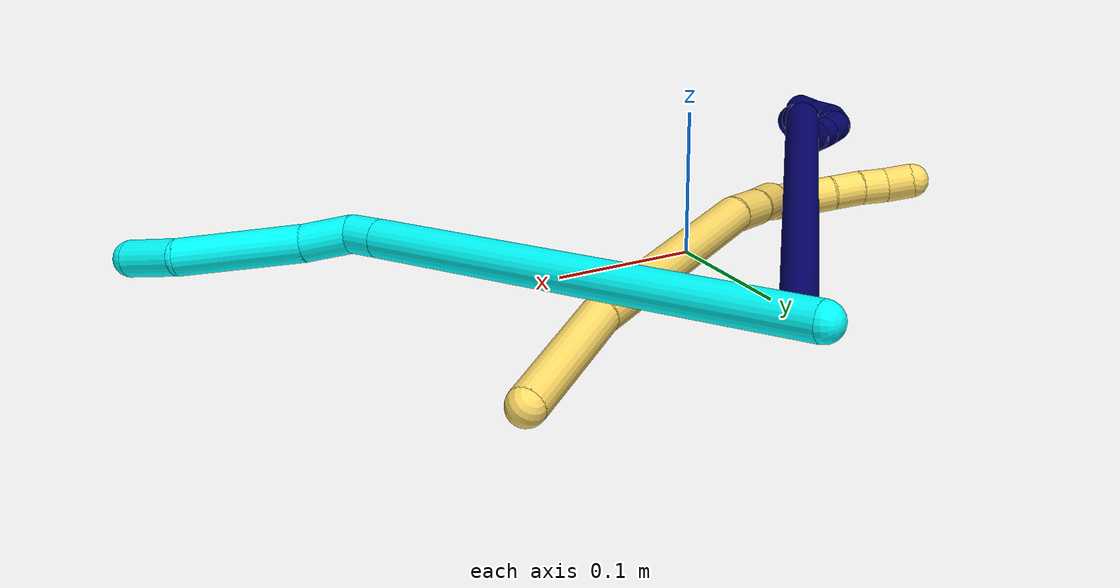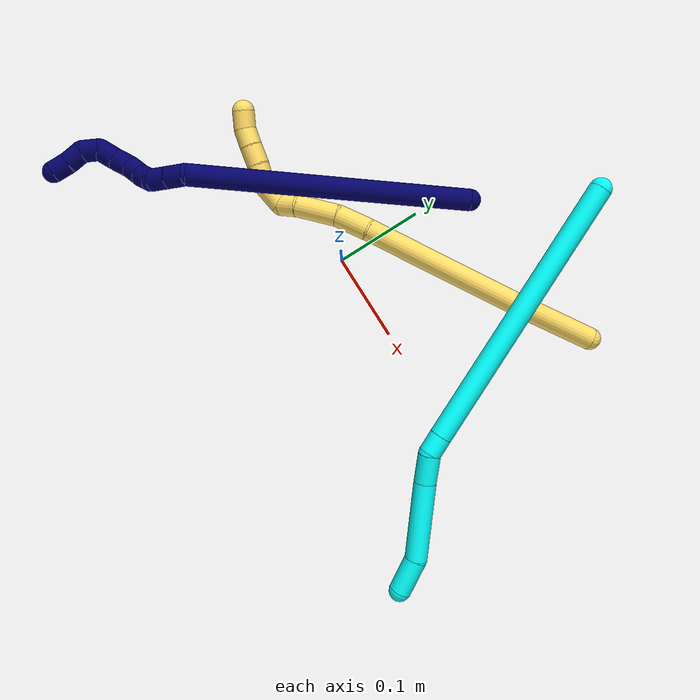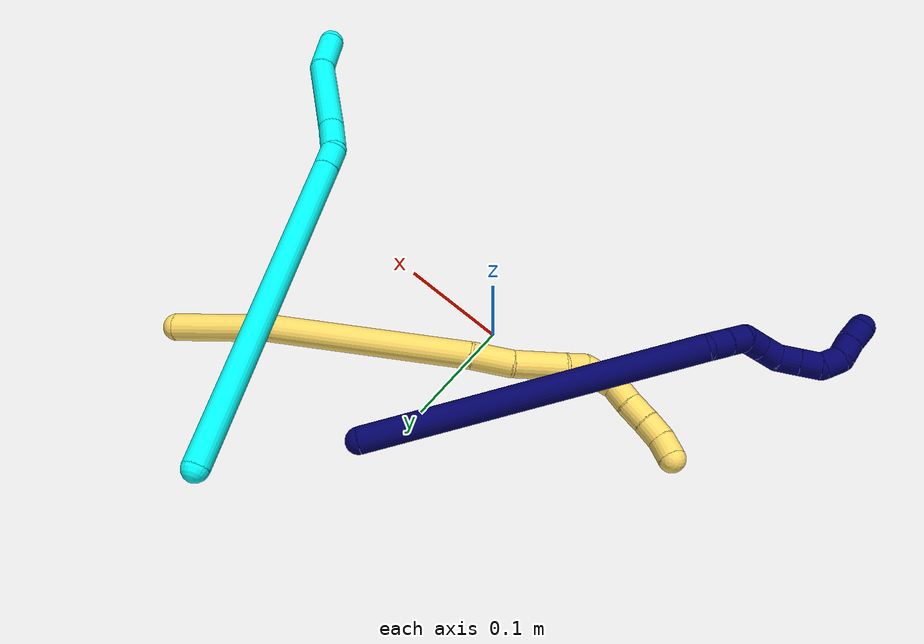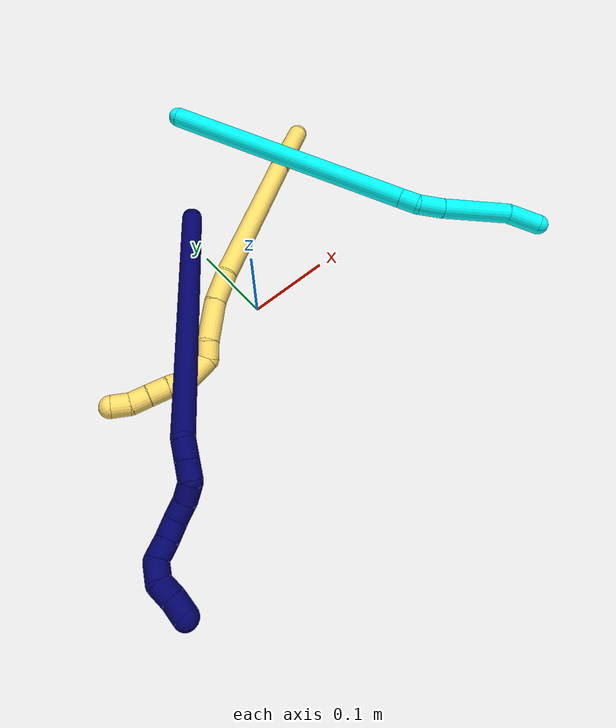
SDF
<sdf version="1.7">
 <world name="default">
  <model name="3">
   <static>0</static>
   <link name="3">
    <collision name="collision-cylinder-e_1_1_4">
     <pose>-0.002041 -0.006985 -0.157481 3.09727 -0.012949 -0.568359</pose>
     <geometry><cylinder><radius>0.0125</radius><length>0.315298</length></cylinder></geometry>
     <surface>
      <friction><ode><mu>1.16</mu><mu2>1.16</mu2><slip1>0</slip1><slip2>0</slip2></ode></friction>
      <contact><ode><kp>1e+06</kp><kd>1</kd><max_vel>0</max_vel><min_depth>0.001</min_depth></ode></contact>
     </surface>
    </collision>
    <visual name="visual-cylinder-e_1_1_4">
     <pose>-0.002041 -0.006985 -0.157481 3.09727 -0.012949 -0.568359</pose>
     <geometry><cylinder><radius>0.0125</radius><length>0.315298</length></cylinder></geometry>
     <material><ambient>0.003922 1 0.996078 1</ambient></material>
    </visual>
    <collision name="collision-cylinder-e_2_4_5">
     <pose>-0.004102 -0.014417 -0.326227 3.10191 -0.001716 -0.086406</pose>
     <geometry><cylinder><radius>0.0125</radius><length>0.022548</length></cylinder></geometry>
     <surface>
      <friction><ode><mu>1.16</mu><mu2>1.16</mu2><slip1>0</slip1><slip2>0</slip2></ode></friction>
      <contact><ode><kp>1e+06</kp><kd>1</kd><max_vel>0</max_vel><min_depth>0.001</min_depth></ode></contact>
     </surface>
    </collision>
    <visual name="visual-cylinder-e_2_4_5">
     <pose>-0.004102 -0.014417 -0.326227 3.10191 -0.001716 -0.086406</pose>
     <geometry><cylinder><radius>0.0125</radius><length>0.022548</length></cylinder></geometry>
     <material><ambient>0.003922 1 0.996078 1</ambient></material>
    </visual>
    <collision name="collision-cylinder-e_3_5_6">
     <pose>0.001842 -0.01111 -0.352566 -2.89747 0.366511 -1.97222</pose>
     <geometry><cylinder><radius>0.0125</radius><length>0.03328</length></cylinder></geometry>
     <surface>
      <friction><ode><mu>1.16</mu><mu2>1.16</mu2><slip1>0</slip1><slip2>0</slip2></ode></friction>
      <contact><ode><kp>1e+06</kp><kd>1</kd><max_vel>0</max_vel><min_depth>0.001</min_depth></ode></contact>
     </surface>
    </collision>
    <visual name="visual-cylinder-e_3_5_6">
     <pose>0.001842 -0.01111 -0.352566 -2.89747 0.366511 -1.97222</pose>
     <geometry><cylinder><radius>0.0125</radius><length>0.03328</length></cylinder></geometry>
     <material><ambient>0.003922 1 0.996078 1</ambient></material>
    </visual>
    <collision name="collision-cylinder-e_4_6_7">
     <pose>0.025662 -0.000937 -0.407381 -2.98149 0.417501 -2.41755</pose>
     <geometry><cylinder><radius>0.0125</radius><length>0.088078</length></cylinder></geometry>
     <surface>
      <friction><ode><mu>1.16</mu><mu2>1.16</mu2><slip1>0</slip1><slip2>0</slip2></ode></friction>
      <contact><ode><kp>1e+06</kp><kd>1</kd><max_vel>0</max_vel><min_depth>0.001</min_depth></ode></contact>
     </surface>
    </collision>
    <visual name="visual-cylinder-e_4_6_7">
     <pose>0.025662 -0.000937 -0.407381 -2.98149 0.417501 -2.41755</pose>
     <geometry><cylinder><radius>0.0125</radius><length>0.088078</length></cylinder></geometry>
     <material><ambient>0.003922 1 0.996078 1</ambient></material>
    </visual>
    <collision name="collision-cylinder-e_5_7_2">
     <pose>0.045267 0.007775 -0.467316 -3.02846 0.085809 -1.29739</pose>
     <geometry><cylinder><radius>0.0125</radius><length>0.040797</length></cylinder></geometry>
     <surface>
      <friction><ode><mu>1.16</mu><mu2>1.16</mu2><slip1>0</slip1><slip2>0</slip2></ode></friction>
      <contact><ode><kp>1e+06</kp><kd>1</kd><max_vel>0</max_vel><min_depth>0.001</min_depth></ode></contact>
     </surface>
    </collision>
    <visual name="visual-cylinder-e_5_7_2">
     <pose>0.045267 0.007775 -0.467316 -3.02846 0.085809 -1.29739</pose>
     <geometry><cylinder><radius>0.0125</radius><length>0.040797</length></cylinder></geometry>
     <material><ambient>0.003922 1 0.996078 1</ambient></material>
    </visual>
    <collision name="collision-sphere-2">
     <pose>0.047015 0.01007 -0.487509 0 -0 0</pose>
     <geometry><sphere><radius>0.0125</radius></sphere></geometry>
     <surface>
      <friction><ode><mu>1.16</mu><mu2>1.16</mu2><slip1>0</slip1><slip2>0</slip2></ode></friction>
      <contact><ode><kp>1e+06</kp><kd>1</kd><max_vel>0</max_vel><min_depth>0.001</min_depth></ode></contact>
     </surface>
    </collision>
    <visual name="visual-sphere-2">
     <pose>0.047015 0.01007 -0.487509 0 -0 0</pose>
     <geometry><sphere><radius>0.0125</radius></sphere></geometry>
     <material><ambient>0.003922 1 0.996078 1</ambient></material>
    </visual>
    <collision name="collision-sphere-7">
     <pose>0.043519 0.005481 -0.447123 0 -0 0</pose>
     <geometry><sphere><radius>0.0125</radius></sphere></geometry>
     <surface>
      <friction><ode><mu>1.16</mu><mu2>1.16</mu2><slip1>0</slip1><slip2>0</slip2></ode></friction>
      <contact><ode><kp>1e+06</kp><kd>1</kd><max_vel>0</max_vel><min_depth>0.001</min_depth></ode></contact>
     </surface>
    </collision>
    <visual name="visual-sphere-7">
     <pose>0.043519 0.005481 -0.447123 0 -0 0</pose>
     <geometry><sphere><radius>0.0125</radius></sphere></geometry>
     <material><ambient>0.003922 1 0.996078 1</ambient></material>
    </visual>
    <collision name="collision-sphere-6">
     <pose>0.007805 -0.007355 -0.36764 0 -0 0</pose>
     <geometry><sphere><radius>0.0125</radius></sphere></geometry>
     <surface>
      <friction><ode><mu>1.16</mu><mu2>1.16</mu2><slip1>0</slip1><slip2>0</slip2></ode></friction>
      <contact><ode><kp>1e+06</kp><kd>1</kd><max_vel>0</max_vel><min_depth>0.001</min_depth></ode></contact>
     </surface>
    </collision>
    <visual name="visual-sphere-6">
     <pose>0.007805 -0.007355 -0.36764 0 -0 0</pose>
     <geometry><sphere><radius>0.0125</radius></sphere></geometry>
     <material><ambient>0.003922 1 0.996078 1</ambient></material>
    </visual>
    <collision name="collision-sphere-5">
     <pose>-0.004121 -0.014864 -0.337492 0 -0 0</pose>
     <geometry><sphere><radius>0.0125</radius></sphere></geometry>
     <surface>
      <friction><ode><mu>1.16</mu><mu2>1.16</mu2><slip1>0</slip1><slip2>0</slip2></ode></friction>
      <contact><ode><kp>1e+06</kp><kd>1</kd><max_vel>0</max_vel><min_depth>0.001</min_depth></ode></contact>
     </surface>
    </collision>
    <visual name="visual-sphere-5">
     <pose>-0.004121 -0.014864 -0.337492 0 -0 0</pose>
     <geometry><sphere><radius>0.0125</radius></sphere></geometry>
     <material><ambient>0.003922 1 0.996078 1</ambient></material>
    </visual>
    <collision name="collision-sphere-1">
     <geometry><sphere><radius>0.0125</radius></sphere></geometry>
     <surface>
      <friction><ode><mu>1.16</mu><mu2>1.16</mu2><slip1>0</slip1><slip2>0</slip2></ode></friction>
      <contact><ode><kp>1e+06</kp><kd>1</kd><max_vel>0</max_vel><min_depth>0.001</min_depth></ode></contact>
     </surface>
    </collision>
    <visual name="visual-sphere-1">
     <geometry><sphere><radius>0.0125</radius></sphere></geometry>
     <material><ambient>0.003922 1 0.996078 1</ambient></material>
    </visual>
    <collision name="collision-sphere-4">
     <pose>-0.004083 -0.01397 -0.314962 0 -0 0</pose>
     <geometry><sphere><radius>0.0125</radius></sphere></geometry>
     <surface>
      <friction><ode><mu>1.16</mu><mu2>1.16</mu2><slip1>0</slip1><slip2>0</slip2></ode></friction>
      <contact><ode><kp>1e+06</kp><kd>1</kd><max_vel>0</max_vel><min_depth>0.001</min_depth></ode></contact>
     </surface>
    </collision>
    <visual name="visual-sphere-4">
     <pose>-0.004083 -0.01397 -0.314962 0 -0 0</pose>
     <geometry><sphere><radius>0.0125</radius></sphere></geometry>
     <material><ambient>0.003922 1 0.996078 1</ambient></material>
    </visual>
    <inertial>
     <pose>0.006864 -0.005325 -0.247377 0 -0 0</pose>
     <mass>0.5</mass>
     <inertia>
      <ixx>0.000716</ixx>
      <ixy>0</ixy>
      <ixz>0</ixz>
      <iyy>-0.003622</iyy>
      <iyz>0</iyz>
      <izz>7.5e-05</izz>
     </inertia>
    </inertial>
   </link>
   <pose>0.089495 0.27169 0.064374 -1.46687 -0.166997 0.437774</pose>
  </model>
  <model name="5">
   <static>0</static>
   <link name="5">
    <collision name="collision-cylinder-e_1_1_4">
     <pose>-0.033118 -0.032678 -0.003406 1.67464 -0.789393 -0.865946</pose>
     <geometry><cylinder><radius>0.0125</radius><length>0.093301</length></cylinder></geometry>
     <surface>
      <friction><ode><mu>1.16</mu><mu2>1.16</mu2><slip1>0</slip1><slip2>0</slip2></ode></friction>
      <contact><ode><kp>1e+06</kp><kd>1</kd><max_vel>0</max_vel><min_depth>0.001</min_depth></ode></contact>
     </surface>
    </collision>
    <visual name="visual-cylinder-e_1_1_4">
     <pose>-0.033118 -0.032678 -0.003406 1.67464 -0.789393 -0.865946</pose>
     <geometry><cylinder><radius>0.0125</radius><length>0.093301</length></cylinder></geometry>
     <material><ambient>1 0.858824 0.4 1</ambient></material>
    </visual>
    <collision name="collision-cylinder-e_2_4_5">
     <pose>-0.139243 -0.119245 -0.024237 1.88355 -0.911005 -1.18508</pose>
     <geometry><cylinder><radius>0.0125</radius><length>0.184798</length></cylinder></geometry>
     <surface>
      <friction><ode><mu>1.16</mu><mu2>1.16</mu2><slip1>0</slip1><slip2>0</slip2></ode></friction>
      <contact><ode><kp>1e+06</kp><kd>1</kd><max_vel>0</max_vel><min_depth>0.001</min_depth></ode></contact>
     </surface>
    </collision>
    <visual name="visual-cylinder-e_2_4_5">
     <pose>-0.139243 -0.119245 -0.024237 1.88355 -0.911005 -1.18508</pose>
     <geometry><cylinder><radius>0.0125</radius><length>0.184798</length></cylinder></geometry>
     <material><ambient>1 0.858824 0.4 1</ambient></material>
    </visual>
    <collision name="collision-cylinder-e_3_5_6">
     <pose>-0.227405 -0.181975 -0.047998 2.19248 -0.948282 -1.56977</pose>
     <geometry><cylinder><radius>0.0125</radius><length>0.03731</length></cylinder></geometry>
     <surface>
      <friction><ode><mu>1.16</mu><mu2>1.16</mu2><slip1>0</slip1><slip2>0</slip2></ode></friction>
      <contact><ode><kp>1e+06</kp><kd>1</kd><max_vel>0</max_vel><min_depth>0.001</min_depth></ode></contact>
     </surface>
    </collision>
    <visual name="visual-cylinder-e_3_5_6">
     <pose>-0.227405 -0.181975 -0.047998 2.19248 -0.948282 -1.56977</pose>
     <geometry><cylinder><radius>0.0125</radius><length>0.03731</length></cylinder></geometry>
     <material><ambient>1 0.858824 0.4 1</ambient></material>
    </visual>
    <collision name="collision-cylinder-e_4_6_7">
     <pose>-0.259323 -0.203476 -0.065755 2.30492 -0.77689 -1.48806</pose>
     <geometry><cylinder><radius>0.0125</radius><length>0.04782</length></cylinder></geometry>
     <surface>
      <friction><ode><mu>1.16</mu><mu2>1.16</mu2><slip1>0</slip1><slip2>0</slip2></ode></friction>
      <contact><ode><kp>1e+06</kp><kd>1</kd><max_vel>0</max_vel><min_depth>0.001</min_depth></ode></contact>
     </surface>
    </collision>
    <visual name="visual-cylinder-e_4_6_7">
     <pose>-0.259323 -0.203476 -0.065755 2.30492 -0.77689 -1.48806</pose>
     <geometry><cylinder><radius>0.0125</radius><length>0.04782</length></cylinder></geometry>
     <material><ambient>1 0.858824 0.4 1</ambient></material>
    </visual>
    <collision name="collision-cylinder-e_5_7_8">
     <pose>-0.282407 -0.220496 -0.083972 2.57088 -0.664296 -1.73201</pose>
     <geometry><cylinder><radius>0.0125</radius><length>0.020508</length></cylinder></geometry>
     <surface>
      <friction><ode><mu>1.16</mu><mu2>1.16</mu2><slip1>0</slip1><slip2>0</slip2></ode></friction>
      <contact><ode><kp>1e+06</kp><kd>1</kd><max_vel>0</max_vel><min_depth>0.001</min_depth></ode></contact>
     </surface>
    </collision>
    <visual name="visual-cylinder-e_5_7_8">
     <pose>-0.282407 -0.220496 -0.083972 2.57088 -0.664296 -1.73201</pose>
     <geometry><cylinder><radius>0.0125</radius><length>0.020508</length></cylinder></geometry>
     <material><ambient>1 0.858824 0.4 1</ambient></material>
    </visual>
    <collision name="collision-cylinder-e_6_8_9">
     <pose>-0.304037 -0.228509 -0.091579 1.79008 -1.3311 -1.54984</pose>
     <geometry><cylinder><radius>0.0125</radius><length>0.031519</length></cylinder></geometry>
     <surface>
      <friction><ode><mu>1.16</mu><mu2>1.16</mu2><slip1>0</slip1><slip2>0</slip2></ode></friction>
      <contact><ode><kp>1e+06</kp><kd>1</kd><max_vel>0</max_vel><min_depth>0.001</min_depth></ode></contact>
     </surface>
    </collision>
    <visual name="visual-cylinder-e_6_8_9">
     <pose>-0.304037 -0.228509 -0.091579 1.79008 -1.3311 -1.54984</pose>
     <geometry><cylinder><radius>0.0125</radius><length>0.031519</length></cylinder></geometry>
     <material><ambient>1 0.858824 0.4 1</ambient></material>
    </visual>
    <collision name="collision-cylinder-e_7_9_10">
     <pose>-0.329519 -0.232284 -0.088375 0.030558 -1.1944 -0.020781</pose>
     <geometry><cylinder><radius>0.0125</radius><length>0.021876</length></cylinder></geometry>
     <surface>
      <friction><ode><mu>1.16</mu><mu2>1.16</mu2><slip1>0</slip1><slip2>0</slip2></ode></friction>
      <contact><ode><kp>1e+06</kp><kd>1</kd><max_vel>0</max_vel><min_depth>0.001</min_depth></ode></contact>
     </surface>
    </collision>
    <visual name="visual-cylinder-e_7_9_10">
     <pose>-0.329519 -0.232284 -0.088375 0.030558 -1.1944 -0.020781</pose>
     <geometry><cylinder><radius>0.0125</radius><length>0.021876</length></cylinder></geometry>
     <material><ambient>1 0.858824 0.4 1</ambient></material>
    </visual>
    <collision name="collision-cylinder-e_8_10_11">
     <pose>-0.350342 -0.233129 -0.081173 0.223115 -1.27344 -0.165294</pose>
     <geometry><cylinder><radius>0.0125</radius><length>0.022278</length></cylinder></geometry>
     <surface>
      <friction><ode><mu>1.16</mu><mu2>1.16</mu2><slip1>0</slip1><slip2>0</slip2></ode></friction>
      <contact><ode><kp>1e+06</kp><kd>1</kd><max_vel>0</max_vel><min_depth>0.001</min_depth></ode></contact>
     </surface>
    </collision>
    <visual name="visual-cylinder-e_8_10_11">
     <pose>-0.350342 -0.233129 -0.081173 0.223115 -1.27344 -0.165294</pose>
     <geometry><cylinder><radius>0.0125</radius><length>0.022278</length></cylinder></geometry>
     <material><ambient>1 0.858824 0.4 1</ambient></material>
    </visual>
    <collision name="collision-cylinder-e_9_11_12">
     <pose>-0.37072 -0.233884 -0.075431 0.012826 -1.31353 -0.009888</pose>
     <geometry><cylinder><radius>0.0125</radius><length>0.020119</length></cylinder></geometry>
     <surface>
      <friction><ode><mu>1.16</mu><mu2>1.16</mu2><slip1>0</slip1><slip2>0</slip2></ode></friction>
      <contact><ode><kp>1e+06</kp><kd>1</kd><max_vel>0</max_vel><min_depth>0.001</min_depth></ode></contact>
     </surface>
    </collision>
    <visual name="visual-cylinder-e_9_11_12">
     <pose>-0.37072 -0.233884 -0.075431 0.012826 -1.31353 -0.009888</pose>
     <geometry><cylinder><radius>0.0125</radius><length>0.020119</length></cylinder></geometry>
     <material><ambient>1 0.858824 0.4 1</ambient></material>
    </visual>
    <collision name="collision-cylinder-e_10_12_2">
     <pose>-0.389202 -0.232829 -0.06768 -0.206552 -1.02598 0.116632</pose>
     <geometry><cylinder><radius>0.0125</radius><length>0.020471</length></cylinder></geometry>
     <surface>
      <friction><ode><mu>1.16</mu><mu2>1.16</mu2><slip1>0</slip1><slip2>0</slip2></ode></friction>
      <contact><ode><kp>1e+06</kp><kd>1</kd><max_vel>0</max_vel><min_depth>0.001</min_depth></ode></contact>
     </surface>
    </collision>
    <visual name="visual-cylinder-e_10_12_2">
     <pose>-0.389202 -0.232829 -0.06768 -0.206552 -1.02598 0.116632</pose>
     <geometry><cylinder><radius>0.0125</radius><length>0.020471</length></cylinder></geometry>
     <material><ambient>1 0.858824 0.4 1</ambient></material>
    </visual>
    <collision name="collision-sphere-2">
     <pose>-0.397956 -0.231741 -0.062488 0 -0 0</pose>
     <geometry><sphere><radius>0.0125</radius></sphere></geometry>
     <surface>
      <friction><ode><mu>1.16</mu><mu2>1.16</mu2><slip1>0</slip1><slip2>0</slip2></ode></friction>
      <contact><ode><kp>1e+06</kp><kd>1</kd><max_vel>0</max_vel><min_depth>0.001</min_depth></ode></contact>
     </surface>
    </collision>
    <visual name="visual-sphere-2">
     <pose>-0.397956 -0.231741 -0.062488 0 -0 0</pose>
     <geometry><sphere><radius>0.0125</radius></sphere></geometry>
     <material><ambient>1 0.858824 0.4 1</ambient></material>
    </visual>
    <collision name="collision-sphere-12">
     <pose>-0.380449 -0.233916 -0.072872 0 -0 0</pose>
     <geometry><sphere><radius>0.0125</radius></sphere></geometry>
     <surface>
      <friction><ode><mu>1.16</mu><mu2>1.16</mu2><slip1>0</slip1><slip2>0</slip2></ode></friction>
      <contact><ode><kp>1e+06</kp><kd>1</kd><max_vel>0</max_vel><min_depth>0.001</min_depth></ode></contact>
     </surface>
    </collision>
    <visual name="visual-sphere-12">
     <pose>-0.380449 -0.233916 -0.072872 0 -0 0</pose>
     <geometry><sphere><radius>0.0125</radius></sphere></geometry>
     <material><ambient>1 0.858824 0.4 1</ambient></material>
    </visual>
    <collision name="collision-sphere-11">
     <pose>-0.360992 -0.233851 -0.07799 0 -0 0</pose>
     <geometry><sphere><radius>0.0125</radius></sphere></geometry>
     <surface>
      <friction><ode><mu>1.16</mu><mu2>1.16</mu2><slip1>0</slip1><slip2>0</slip2></ode></friction>
      <contact><ode><kp>1e+06</kp><kd>1</kd><max_vel>0</max_vel><min_depth>0.001</min_depth></ode></contact>
     </surface>
    </collision>
    <visual name="visual-sphere-11">
     <pose>-0.360992 -0.233851 -0.07799 0 -0 0</pose>
     <geometry><sphere><radius>0.0125</radius></sphere></geometry>
     <material><ambient>1 0.858824 0.4 1</ambient></material>
    </visual>
    <collision name="collision-sphere-10">
     <pose>-0.339691 -0.232407 -0.084356 0 -0 0</pose>
     <geometry><sphere><radius>0.0125</radius></sphere></geometry>
     <surface>
      <friction><ode><mu>1.16</mu><mu2>1.16</mu2><slip1>0</slip1><slip2>0</slip2></ode></friction>
      <contact><ode><kp>1e+06</kp><kd>1</kd><max_vel>0</max_vel><min_depth>0.001</min_depth></ode></contact>
     </surface>
    </collision>
    <visual name="visual-sphere-10">
     <pose>-0.339691 -0.232407 -0.084356 0 -0 0</pose>
     <geometry><sphere><radius>0.0125</radius></sphere></geometry>
     <material><ambient>1 0.858824 0.4 1</ambient></material>
    </visual>
    <collision name="collision-sphere-9">
     <pose>-0.319347 -0.232161 -0.092393 0 -0 0</pose>
     <geometry><sphere><radius>0.0125</radius></sphere></geometry>
     <surface>
      <friction><ode><mu>1.16</mu><mu2>1.16</mu2><slip1>0</slip1><slip2>0</slip2></ode></friction>
      <contact><ode><kp>1e+06</kp><kd>1</kd><max_vel>0</max_vel><min_depth>0.001</min_depth></ode></contact>
     </surface>
    </collision>
    <visual name="visual-sphere-9">
     <pose>-0.319347 -0.232161 -0.092393 0 -0 0</pose>
     <geometry><sphere><radius>0.0125</radius></sphere></geometry>
     <material><ambient>1 0.858824 0.4 1</ambient></material>
    </visual>
    <collision name="collision-sphere-4">
     <pose>-0.066237 -0.065356 -0.006811 0 -0 0</pose>
     <geometry><sphere><radius>0.0125</radius></sphere></geometry>
     <surface>
      <friction><ode><mu>1.16</mu><mu2>1.16</mu2><slip1>0</slip1><slip2>0</slip2></ode></friction>
      <contact><ode><kp>1e+06</kp><kd>1</kd><max_vel>0</max_vel><min_depth>0.001</min_depth></ode></contact>
     </surface>
    </collision>
    <visual name="visual-sphere-4">
     <pose>-0.066237 -0.065356 -0.006811 0 -0 0</pose>
     <geometry><sphere><radius>0.0125</radius></sphere></geometry>
     <material><ambient>1 0.858824 0.4 1</ambient></material>
    </visual>
    <collision name="collision-sphere-1">
     <geometry><sphere><radius>0.0125</radius></sphere></geometry>
     <surface>
      <friction><ode><mu>1.16</mu><mu2>1.16</mu2><slip1>0</slip1><slip2>0</slip2></ode></friction>
      <contact><ode><kp>1e+06</kp><kd>1</kd><max_vel>0</max_vel><min_depth>0.001</min_depth></ode></contact>
     </surface>
    </collision>
    <visual name="visual-sphere-1">
     <geometry><sphere><radius>0.0125</radius></sphere></geometry>
     <material><ambient>1 0.858824 0.4 1</ambient></material>
    </visual>
    <collision name="collision-sphere-8">
     <pose>-0.288728 -0.224857 -0.090766 0 -0 0</pose>
     <geometry><sphere><radius>0.0125</radius></sphere></geometry>
     <surface>
      <friction><ode><mu>1.16</mu><mu2>1.16</mu2><slip1>0</slip1><slip2>0</slip2></ode></friction>
      <contact><ode><kp>1e+06</kp><kd>1</kd><max_vel>0</max_vel><min_depth>0.001</min_depth></ode></contact>
     </surface>
    </collision>
    <visual name="visual-sphere-8">
     <pose>-0.288728 -0.224857 -0.090766 0 -0 0</pose>
     <geometry><sphere><radius>0.0125</radius></sphere></geometry>
     <material><ambient>1 0.858824 0.4 1</ambient></material>
    </visual>
    <collision name="collision-sphere-5">
     <pose>-0.21225 -0.173133 -0.041663 0 -0 0</pose>
     <geometry><sphere><radius>0.0125</radius></sphere></geometry>
     <surface>
      <friction><ode><mu>1.16</mu><mu2>1.16</mu2><slip1>0</slip1><slip2>0</slip2></ode></friction>
      <contact><ode><kp>1e+06</kp><kd>1</kd><max_vel>0</max_vel><min_depth>0.001</min_depth></ode></contact>
     </surface>
    </collision>
    <visual name="visual-sphere-5">
     <pose>-0.21225 -0.173133 -0.041663 0 -0 0</pose>
     <geometry><sphere><radius>0.0125</radius></sphere></geometry>
     <material><ambient>1 0.858824 0.4 1</ambient></material>
    </visual>
    <collision name="collision-sphere-6">
     <pose>-0.242561 -0.190818 -0.054333 0 -0 0</pose>
     <geometry><sphere><radius>0.0125</radius></sphere></geometry>
     <surface>
      <friction><ode><mu>1.16</mu><mu2>1.16</mu2><slip1>0</slip1><slip2>0</slip2></ode></friction>
      <contact><ode><kp>1e+06</kp><kd>1</kd><max_vel>0</max_vel><min_depth>0.001</min_depth></ode></contact>
     </surface>
    </collision>
    <visual name="visual-sphere-6">
     <pose>-0.242561 -0.190818 -0.054333 0 -0 0</pose>
     <geometry><sphere><radius>0.0125</radius></sphere></geometry>
     <material><ambient>1 0.858824 0.4 1</ambient></material>
    </visual>
    <collision name="collision-sphere-7">
     <pose>-0.276085 -0.216134 -0.077178 0 -0 0</pose>
     <geometry><sphere><radius>0.0125</radius></sphere></geometry>
     <surface>
      <friction><ode><mu>1.16</mu><mu2>1.16</mu2><slip1>0</slip1><slip2>0</slip2></ode></friction>
      <contact><ode><kp>1e+06</kp><kd>1</kd><max_vel>0</max_vel><min_depth>0.001</min_depth></ode></contact>
     </surface>
    </collision>
    <visual name="visual-sphere-7">
     <pose>-0.276085 -0.216134 -0.077178 0 -0 0</pose>
     <geometry><sphere><radius>0.0125</radius></sphere></geometry>
     <material><ambient>1 0.858824 0.4 1</ambient></material>
    </visual>
    <inertial>
     <pose>-0.191042 -0.146152 -0.041971 0 -0 0</pose>
     <mass>0.5</mass>
     <inertia>
      <ixx>-0.000227</ixx>
      <ixy>0</ixy>
      <ixz>0</ixz>
      <iyy>-9e-06</iyy>
      <iyz>0</iyz>
      <izz>0.000861</izz>
     </inertia>
    </inertial>
   </link>
   <pose>0.224022 0.187035 0.011494 -0.63977 -0.19924 -0.077136</pose>
  </model>
  <model name="7">
   <static>0</static>
   <link name="7">
    <collision name="collision-cylinder-e_1_1_4">
     <pose>-0.044557 -0.116475 0.097897 0.871847 -0.284877 -0.133405</pose>
     <geometry><cylinder><radius>0.0125</radius><length>0.317084</length></cylinder></geometry>
     <surface>
      <friction><ode><mu>1.16</mu><mu2>1.16</mu2><slip1>0</slip1><slip2>0</slip2></ode></friction>
      <contact><ode><kp>1e+06</kp><kd>1</kd><max_vel>0</max_vel><min_depth>0.001</min_depth></ode></contact>
     </surface>
    </collision>
    <visual name="visual-cylinder-e_1_1_4">
     <pose>-0.044557 -0.116475 0.097897 0.871847 -0.284877 -0.133405</pose>
     <geometry><cylinder><radius>0.0125</radius><length>0.317084</length></cylinder></geometry>
     <material><ambient>0.003922 0 0.403922 1</ambient></material>
    </visual>
    <collision name="collision-cylinder-e_2_4_5">
     <pose>-0.091563 -0.24339 0.19805 1.35791 -0.225455 -0.182196</pose>
     <geometry><cylinder><radius>0.0125</radius><length>0.021916</length></cylinder></geometry>
     <surface>
      <friction><ode><mu>1.16</mu><mu2>1.16</mu2><slip1>0</slip1><slip2>0</slip2></ode></friction>
      <contact><ode><kp>1e+06</kp><kd>1</kd><max_vel>0</max_vel><min_depth>0.001</min_depth></ode></contact>
     </surface>
    </collision>
    <visual name="visual-cylinder-e_2_4_5">
     <pose>-0.091563 -0.24339 0.19805 1.35791 -0.225455 -0.182196</pose>
     <geometry><cylinder><radius>0.0125</radius><length>0.021916</length></cylinder></geometry>
     <material><ambient>0.003922 0 0.403922 1</ambient></material>
    </visual>
    <collision name="collision-cylinder-e_3_5_6">
     <pose>-0.096333 -0.263729 0.202453 1.3573 -0.22518 -0.181862</pose>
     <geometry><cylinder><radius>0.0125</radius><length>0.020784</length></cylinder></geometry>
     <surface>
      <friction><ode><mu>1.16</mu><mu2>1.16</mu2><slip1>0</slip1><slip2>0</slip2></ode></friction>
      <contact><ode><kp>1e+06</kp><kd>1</kd><max_vel>0</max_vel><min_depth>0.001</min_depth></ode></contact>
     </surface>
    </collision>
    <visual name="visual-cylinder-e_3_5_6">
     <pose>-0.096333 -0.263729 0.202453 1.3573 -0.22518 -0.181862</pose>
     <geometry><cylinder><radius>0.0125</radius><length>0.020784</length></cylinder></geometry>
     <material><ambient>0.003922 0 0.403922 1</ambient></material>
    </visual>
    <collision name="collision-cylinder-e_4_6_7">
     <pose>-0.105362 -0.280921 0.203109 1.77231 -0.733603 -0.879715</pose>
     <geometry><cylinder><radius>0.0125</radius><length>0.020041</length></cylinder></geometry>
     <surface>
      <friction><ode><mu>1.16</mu><mu2>1.16</mu2><slip1>0</slip1><slip2>0</slip2></ode></friction>
      <contact><ode><kp>1e+06</kp><kd>1</kd><max_vel>0</max_vel><min_depth>0.001</min_depth></ode></contact>
     </surface>
    </collision>
    <visual name="visual-cylinder-e_4_6_7">
     <pose>-0.105362 -0.280921 0.203109 1.77231 -0.733603 -0.879715</pose>
     <geometry><cylinder><radius>0.0125</radius><length>0.020041</length></cylinder></geometry>
     <material><ambient>0.003922 0 0.403922 1</ambient></material>
    </visual>
    <collision name="collision-cylinder-e_5_7_8">
     <pose>-0.120018 -0.294279 0.201858 1.53152 -0.91842 -0.887574</pose>
     <geometry><cylinder><radius>0.0125</radius><length>0.020001</length></cylinder></geometry>
     <surface>
      <friction><ode><mu>1.16</mu><mu2>1.16</mu2><slip1>0</slip1><slip2>0</slip2></ode></friction>
      <contact><ode><kp>1e+06</kp><kd>1</kd><max_vel>0</max_vel><min_depth>0.001</min_depth></ode></contact>
     </surface>
    </collision>
    <visual name="visual-cylinder-e_5_7_8">
     <pose>-0.120018 -0.294279 0.201858 1.53152 -0.91842 -0.887574</pose>
     <geometry><cylinder><radius>0.0125</radius><length>0.020001</length></cylinder></geometry>
     <material><ambient>0.003922 0 0.403922 1</ambient></material>
    </visual>
    <collision name="collision-cylinder-e_6_8_9">
     <pose>-0.134769 -0.306407 0.20642 0.951193 -0.740437 -0.394578</pose>
     <geometry><cylinder><radius>0.0125</radius><length>0.020172</length></cylinder></geometry>
     <surface>
      <friction><ode><mu>1.16</mu><mu2>1.16</mu2><slip1>0</slip1><slip2>0</slip2></ode></friction>
      <contact><ode><kp>1e+06</kp><kd>1</kd><max_vel>0</max_vel><min_depth>0.001</min_depth></ode></contact>
     </surface>
    </collision>
    <visual name="visual-cylinder-e_6_8_9">
     <pose>-0.134769 -0.306407 0.20642 0.951193 -0.740437 -0.394578</pose>
     <geometry><cylinder><radius>0.0125</radius><length>0.020172</length></cylinder></geometry>
     <material><ambient>0.003922 0 0.403922 1</ambient></material>
    </visual>
    <collision name="collision-cylinder-e_7_9_10">
     <pose>-0.148447 -0.317669 0.215814 0.798084 -0.757811 -0.332664</pose>
     <geometry><cylinder><radius>0.0125</radius><length>0.020002</length></cylinder></geometry>
     <surface>
      <friction><ode><mu>1.16</mu><mu2>1.16</mu2><slip1>0</slip1><slip2>0</slip2></ode></friction>
      <contact><ode><kp>1e+06</kp><kd>1</kd><max_vel>0</max_vel><min_depth>0.001</min_depth></ode></contact>
     </surface>
    </collision>
    <visual name="visual-cylinder-e_7_9_10">
     <pose>-0.148447 -0.317669 0.215814 0.798084 -0.757811 -0.332664</pose>
     <geometry><cylinder><radius>0.0125</radius><length>0.020002</length></cylinder></geometry>
     <material><ambient>0.003922 0 0.403922 1</ambient></material>
    </visual>
    <collision name="collision-cylinder-e_8_10_11">
     <pose>-0.156885 -0.331432 0.22581 1.04882 -0.157039 -0.090961</pose>
     <geometry><cylinder><radius>0.0125</radius><length>0.02</length></cylinder></geometry>
     <surface>
      <friction><ode><mu>1.16</mu><mu2>1.16</mu2><slip1>0</slip1><slip2>0</slip2></ode></friction>
      <contact><ode><kp>1e+06</kp><kd>1</kd><max_vel>0</max_vel><min_depth>0.001</min_depth></ode></contact>
     </surface>
    </collision>
    <visual name="visual-cylinder-e_8_10_11">
     <pose>-0.156885 -0.331432 0.22581 1.04882 -0.157039 -0.090961</pose>
     <geometry><cylinder><radius>0.0125</radius><length>0.02</length></cylinder></geometry>
     <material><ambient>0.003922 0 0.403922 1</ambient></material>
    </visual>
    <collision name="collision-cylinder-e_9_11_12">
     <pose>-0.154497 -0.348575 0.234014 1.20571 0.406263 0.28168</pose>
     <geometry><cylinder><radius>0.0125</radius><length>0.020001</length></cylinder></geometry>
     <surface>
      <friction><ode><mu>1.16</mu><mu2>1.16</mu2><slip1>0</slip1><slip2>0</slip2></ode></friction>
      <contact><ode><kp>1e+06</kp><kd>1</kd><max_vel>0</max_vel><min_depth>0.001</min_depth></ode></contact>
     </surface>
    </collision>
    <visual name="visual-cylinder-e_9_11_12">
     <pose>-0.154497 -0.348575 0.234014 1.20571 0.406263 0.28168</pose>
     <geometry><cylinder><radius>0.0125</radius><length>0.020001</length></cylinder></geometry>
     <material><ambient>0.003922 0 0.403922 1</ambient></material>
    </visual>
    <collision name="collision-cylinder-e_10_12_2">
     <pose>-0.147719 -0.36586 0.241327 1.13693 0.286515 0.18377</pose>
     <geometry><cylinder><radius>0.0125</radius><length>0.02</length></cylinder></geometry>
     <surface>
      <friction><ode><mu>1.16</mu><mu2>1.16</mu2><slip1>0</slip1><slip2>0</slip2></ode></friction>
      <contact><ode><kp>1e+06</kp><kd>1</kd><max_vel>0</max_vel><min_depth>0.001</min_depth></ode></contact>
     </surface>
    </collision>
    <visual name="visual-cylinder-e_10_12_2">
     <pose>-0.147719 -0.36586 0.241327 1.13693 0.286515 0.18377</pose>
     <geometry><cylinder><radius>0.0125</radius><length>0.02</length></cylinder></geometry>
     <material><ambient>0.003922 0 0.403922 1</ambient></material>
    </visual>
    <collision name="collision-sphere-2">
     <pose>-0.144893 -0.374563 0.245359 0 -0 0</pose>
     <geometry><sphere><radius>0.0125</radius></sphere></geometry>
     <surface>
      <friction><ode><mu>1.16</mu><mu2>1.16</mu2><slip1>0</slip1><slip2>0</slip2></ode></friction>
      <contact><ode><kp>1e+06</kp><kd>1</kd><max_vel>0</max_vel><min_depth>0.001</min_depth></ode></contact>
     </surface>
    </collision>
    <visual name="visual-sphere-2">
     <pose>-0.144893 -0.374563 0.245359 0 -0 0</pose>
     <geometry><sphere><radius>0.0125</radius></sphere></geometry>
     <material><ambient>0.003922 0 0.403922 1</ambient></material>
    </visual>
    <collision name="collision-sphere-12">
     <pose>-0.150545 -0.357156 0.237294 0 -0 0</pose>
     <geometry><sphere><radius>0.0125</radius></sphere></geometry>
     <surface>
      <friction><ode><mu>1.16</mu><mu2>1.16</mu2><slip1>0</slip1><slip2>0</slip2></ode></friction>
      <contact><ode><kp>1e+06</kp><kd>1</kd><max_vel>0</max_vel><min_depth>0.001</min_depth></ode></contact>
     </surface>
    </collision>
    <visual name="visual-sphere-12">
     <pose>-0.150545 -0.357156 0.237294 0 -0 0</pose>
     <geometry><sphere><radius>0.0125</radius></sphere></geometry>
     <material><ambient>0.003922 0 0.403922 1</ambient></material>
    </visual>
    <collision name="collision-sphere-11">
     <pose>-0.158449 -0.339994 0.230735 0 -0 0</pose>
     <geometry><sphere><radius>0.0125</radius></sphere></geometry>
     <surface>
      <friction><ode><mu>1.16</mu><mu2>1.16</mu2><slip1>0</slip1><slip2>0</slip2></ode></friction>
      <contact><ode><kp>1e+06</kp><kd>1</kd><max_vel>0</max_vel><min_depth>0.001</min_depth></ode></contact>
     </surface>
    </collision>
    <visual name="visual-sphere-11">
     <pose>-0.158449 -0.339994 0.230735 0 -0 0</pose>
     <geometry><sphere><radius>0.0125</radius></sphere></geometry>
     <material><ambient>0.003922 0 0.403922 1</ambient></material>
    </visual>
    <collision name="collision-sphere-10">
     <pose>-0.155321 -0.32287 0.220885 0 -0 0</pose>
     <geometry><sphere><radius>0.0125</radius></sphere></geometry>
     <surface>
      <friction><ode><mu>1.16</mu><mu2>1.16</mu2><slip1>0</slip1><slip2>0</slip2></ode></friction>
      <contact><ode><kp>1e+06</kp><kd>1</kd><max_vel>0</max_vel><min_depth>0.001</min_depth></ode></contact>
     </surface>
    </collision>
    <visual name="visual-sphere-10">
     <pose>-0.155321 -0.32287 0.220885 0 -0 0</pose>
     <geometry><sphere><radius>0.0125</radius></sphere></geometry>
     <material><ambient>0.003922 0 0.403922 1</ambient></material>
    </visual>
    <collision name="collision-sphere-9">
     <pose>-0.141573 -0.312468 0.210743 0 -0 0</pose>
     <geometry><sphere><radius>0.0125</radius></sphere></geometry>
     <surface>
      <friction><ode><mu>1.16</mu><mu2>1.16</mu2><slip1>0</slip1><slip2>0</slip2></ode></friction>
      <contact><ode><kp>1e+06</kp><kd>1</kd><max_vel>0</max_vel><min_depth>0.001</min_depth></ode></contact>
     </surface>
    </collision>
    <visual name="visual-sphere-9">
     <pose>-0.141573 -0.312468 0.210743 0 -0 0</pose>
     <geometry><sphere><radius>0.0125</radius></sphere></geometry>
     <material><ambient>0.003922 0 0.403922 1</ambient></material>
    </visual>
    <collision name="collision-sphere-4">
     <pose>-0.089113 -0.232951 0.195793 0 -0 0</pose>
     <geometry><sphere><radius>0.0125</radius></sphere></geometry>
     <surface>
      <friction><ode><mu>1.16</mu><mu2>1.16</mu2><slip1>0</slip1><slip2>0</slip2></ode></friction>
      <contact><ode><kp>1e+06</kp><kd>1</kd><max_vel>0</max_vel><min_depth>0.001</min_depth></ode></contact>
     </surface>
    </collision>
    <visual name="visual-sphere-4">
     <pose>-0.089113 -0.232951 0.195793 0 -0 0</pose>
     <geometry><sphere><radius>0.0125</radius></sphere></geometry>
     <material><ambient>0.003922 0 0.403922 1</ambient></material>
    </visual>
    <collision name="collision-sphere-1">
     <geometry><sphere><radius>0.0125</radius></sphere></geometry>
     <surface>
      <friction><ode><mu>1.16</mu><mu2>1.16</mu2><slip1>0</slip1><slip2>0</slip2></ode></friction>
      <contact><ode><kp>1e+06</kp><kd>1</kd><max_vel>0</max_vel><min_depth>0.001</min_depth></ode></contact>
     </surface>
    </collision>
    <visual name="visual-sphere-1">
     <geometry><sphere><radius>0.0125</radius></sphere></geometry>
     <material><ambient>0.003922 0 0.403922 1</ambient></material>
    </visual>
    <collision name="collision-sphere-8">
     <pose>-0.127965 -0.300346 0.202096 0 -0 0</pose>
     <geometry><sphere><radius>0.0125</radius></sphere></geometry>
     <surface>
      <friction><ode><mu>1.16</mu><mu2>1.16</mu2><slip1>0</slip1><slip2>0</slip2></ode></friction>
      <contact><ode><kp>1e+06</kp><kd>1</kd><max_vel>0</max_vel><min_depth>0.001</min_depth></ode></contact>
     </surface>
    </collision>
    <visual name="visual-sphere-8">
     <pose>-0.127965 -0.300346 0.202096 0 -0 0</pose>
     <geometry><sphere><radius>0.0125</radius></sphere></geometry>
     <material><ambient>0.003922 0 0.403922 1</ambient></material>
    </visual>
    <collision name="collision-sphere-5">
     <pose>-0.094012 -0.253829 0.200307 0 -0 0</pose>
     <geometry><sphere><radius>0.0125</radius></sphere></geometry>
     <surface>
      <friction><ode><mu>1.16</mu><mu2>1.16</mu2><slip1>0</slip1><slip2>0</slip2></ode></friction>
      <contact><ode><kp>1e+06</kp><kd>1</kd><max_vel>0</max_vel><min_depth>0.001</min_depth></ode></contact>
     </surface>
    </collision>
    <visual name="visual-sphere-5">
     <pose>-0.094012 -0.253829 0.200307 0 -0 0</pose>
     <geometry><sphere><radius>0.0125</radius></sphere></geometry>
     <material><ambient>0.003922 0 0.403922 1</ambient></material>
    </visual>
    <collision name="collision-sphere-6">
     <pose>-0.098653 -0.273628 0.204599 0 -0 0</pose>
     <geometry><sphere><radius>0.0125</radius></sphere></geometry>
     <surface>
      <friction><ode><mu>1.16</mu><mu2>1.16</mu2><slip1>0</slip1><slip2>0</slip2></ode></friction>
      <contact><ode><kp>1e+06</kp><kd>1</kd><max_vel>0</max_vel><min_depth>0.001</min_depth></ode></contact>
     </surface>
    </collision>
    <visual name="visual-sphere-6">
     <pose>-0.098653 -0.273628 0.204599 0 -0 0</pose>
     <geometry><sphere><radius>0.0125</radius></sphere></geometry>
     <material><ambient>0.003922 0 0.403922 1</ambient></material>
    </visual>
    <collision name="collision-sphere-7">
     <pose>-0.112072 -0.288213 0.20162 0 -0 0</pose>
     <geometry><sphere><radius>0.0125</radius></sphere></geometry>
     <surface>
      <friction><ode><mu>1.16</mu><mu2>1.16</mu2><slip1>0</slip1><slip2>0</slip2></ode></friction>
      <contact><ode><kp>1e+06</kp><kd>1</kd><max_vel>0</max_vel><min_depth>0.001</min_depth></ode></contact>
     </surface>
    </collision>
    <visual name="visual-sphere-7">
     <pose>-0.112072 -0.288213 0.20162 0 -0 0</pose>
     <geometry><sphere><radius>0.0125</radius></sphere></geometry>
     <material><ambient>0.003922 0 0.403922 1</ambient></material>
    </visual>
    <inertial>
     <pose>-0.075038 -0.185432 0.140403 0 -0 0</pose>
     <mass>0.5</mass>
     <inertia>
      <ixx>0.002195</ixx>
      <ixy>0</ixy>
      <ixz>0</ixz>
      <iyy>0.001413</iyy>
      <iyz>0</iyz>
      <izz>0.002745</izz>
     </inertia>
    </inertial>
   </link>
   <pose>0.020568 0.158088 0.011498 0.508639 -0.212074 -0.312207</pose>
  </model>
 </world>
</sdf>
